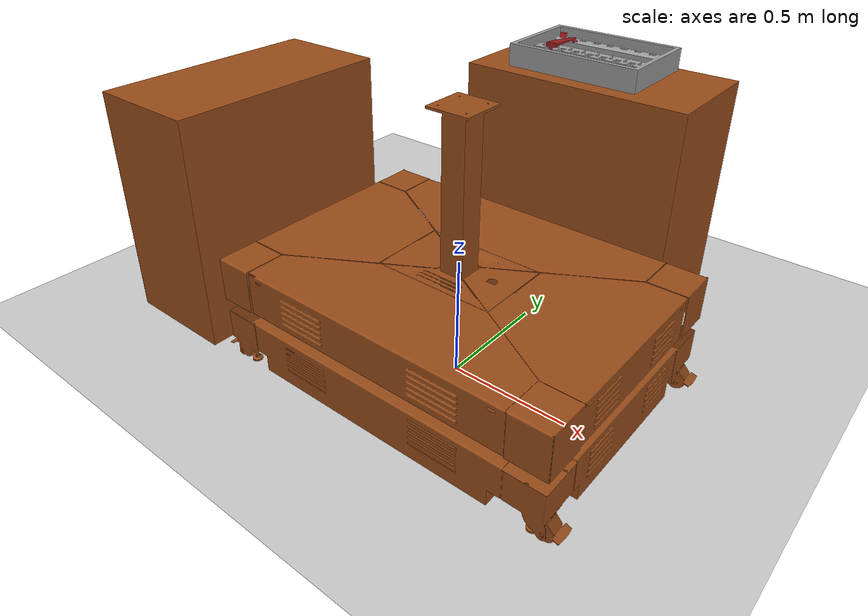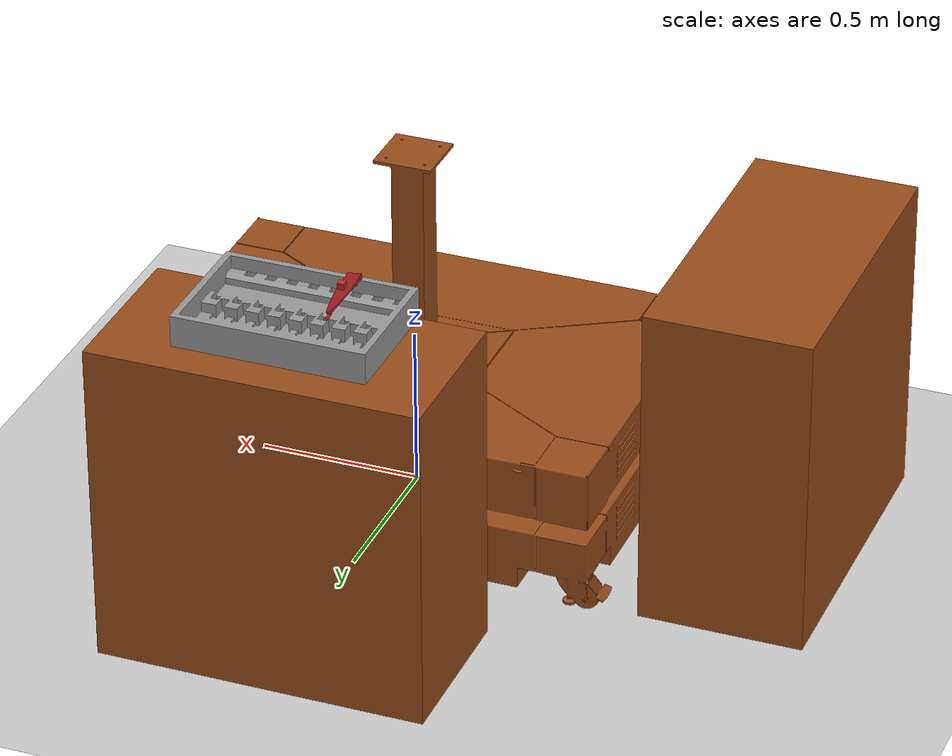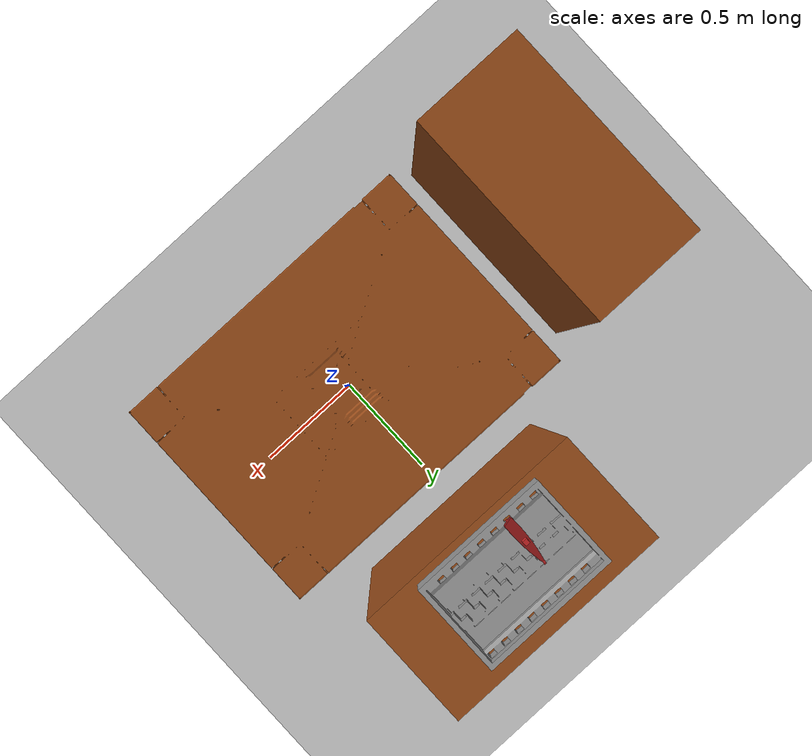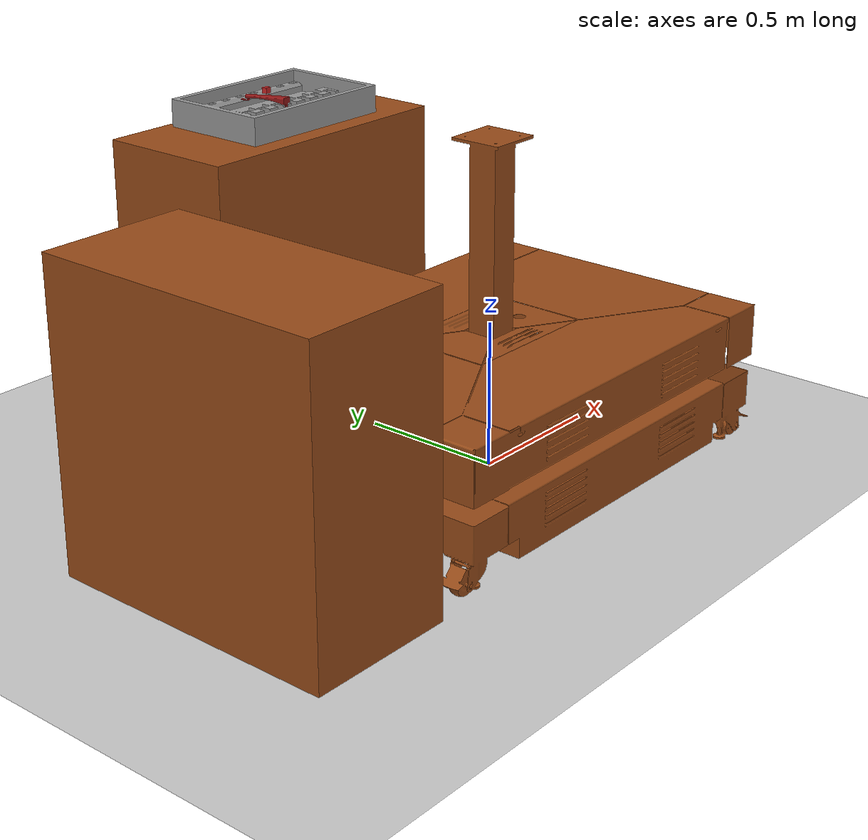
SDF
<sdf version="1.6">
 <world name="default">
  <light name="sun" type="directional">
   <pose>0 0 10 0 -0 0</pose>
   <diffuse>0.8 0.8 0.8 1</diffuse>
   <specular>0.1 0.1 0.1 1</specular>
   <attenuation>
    <range>1000</range>
    <constant>0.9</constant>
    <linear>0.01</linear>
    <quadratic>0.001</quadratic>
   </attenuation>
   <direction>-0.5 0.5 -1</direction>
  </light>
  <model name="ground_plane">
   <static>1</static>
   <link name="link">
    <collision name="collision">
     <geometry><plane><normal>0 0 1</normal><size>100 100</size></plane></geometry>
     <surface><friction><ode><mu>100</mu><mu2>50</mu2></ode></friction></surface>
    </collision>
    <visual name="visual">
     <cast_shadows>0</cast_shadows>
     <geometry><plane><normal>0 0 1</normal><size>100 100</size></plane></geometry>
     <material>
      <script><uri>file://media/materials/scripts/gazebo.material</uri><name>Gazebo/Grey</name></script>
     </material>
    </visual>
   </link>
  </model>
  <gravity>0 0 -9.8</gravity>
  <magnetic_field>6e-06 2.3e-05 -4.2e-05</magnetic_field>
  <atmosphere type="adiabatic"/>
  <physics name="default_physics" default="0" type="ode">
   <max_step_size>0.001</max_step_size>
   <real_time_factor>1</real_time_factor>
   <real_time_update_rate>1000</real_time_update_rate>
  </physics>
  <scene><ambient>0.4 0.4 0.4 1</ambient><background>0.25 0.25 0.25 1</background><shadows>1</shadows></scene>
  <spherical_coordinates>
   <surface_model>EARTH_WGS84</surface_model>
   <latitude_deg>0</latitude_deg>
   <longitude_deg>0</longitude_deg>
   <elevation>0</elevation>
   <heading_deg>0</heading_deg>
  </spherical_coordinates>
  <model name="stand">
   <static>1</static>
   <pose>0 1.6 1.6   1.5708 -0 -3.14159</pose>
   <link name="stand">
    <self_collide>1</self_collide>
    <inertial>
     <mass>10</mass>
     <inertia><ixx>1</ixx><ixy>0</ixy><ixz>0</ixz><iyy>1</iyy><iyz>0</iyz><izz>1</izz></inertia>
    </inertial>
    <collision name="collision1">
     <geometry>
      <mesh>
       <scale>0.001 0.001 0.001</scale>
       <uri>/home/robotics/catkin_ws/src/AI-robot-control/simulation/meshes/environments/collision/plain_table.stl</uri>
      </mesh>
     </geometry>
    </collision>
    <visual name="visual1">
     <geometry>
      <mesh>
       <scale>0.001 0.001 0.001</scale>
       <uri>/home/robotics/catkin_ws/src/AI-robot-control/simulation/meshes/environments/visual/plain_table.dae</uri>
      </mesh>
     </geometry>
     <material><ambient>0.6 0.3 0.1 1</ambient></material>
    </visual>
   </link>
  </model>
  <model name="goal_stand">
   <static>1</static>
   <pose>-0.475 -0.03 1.6   1.5708 -0 1.5708</pose>
   <link name="stand">
    <self_collide>1</self_collide>
    <inertial>
     <mass>10</mass>
     <inertia><ixx>1</ixx><ixy>0</ixy><ixz>0</ixz><iyy>1</iyy><iyz>0</iyz><izz>1</izz></inertia>
    </inertial>
    <collision name="collision1">
     <geometry>
      <mesh>
       <scale>0.001 0.001 0.001</scale>
       <uri>/home/robotics/catkin_ws/src/AI-robot-control/simulation/meshes/environments/collision/plain_table.stl</uri>
      </mesh>
     </geometry>
    </collision>
    <visual name="visual1">
     <geometry>
      <mesh>
       <scale>0.001 0.001 0.001</scale>
       <uri>/home/robotics/catkin_ws/src/AI-robot-control/simulation/meshes/environments/visual/plain_table.dae</uri>
      </mesh>
     </geometry>
     <material><ambient>0.6 0.3 0.1 1</ambient></material>
    </visual>
   </link>
  </model>
  <model name="Pickbot_Case">
   <static>1</static>
   <link name="Pickbot_Case">
    <self_collide>1</self_collide>
    <inertial>
     <mass>10</mass>
     <inertia><ixx>1</ixx><ixy>0</ixy><ixz>0</ixz><iyy>1</iyy><iyz>0</iyz><izz>1</izz></inertia>
    </inertial>
    <collision name="collision1">
     <geometry>
      <mesh>
       <scale>0.001 0.001 0.001</scale>
       <uri>/home/robotics/catkin_ws/src/AI-robot-control/simulation/meshes/environments/collision/Pickbot_Case.stl</uri>
      </mesh>
     </geometry>
    </collision>
    <visual name="visual1">
     <geometry>
      <mesh>
       <scale>0.001 0.001 0.001</scale>
       <uri>/home/robotics/catkin_ws/src/AI-robot-control/simulation/meshes/environments/visual/Pickbot_Case.dae</uri>
      </mesh>
     </geometry>
     <material><ambient>0.6 0.3 0.1 1</ambient></material>
    </visual>
   </link>
  </model>
  <model name="door_handle_container">
   <pose>-0.019 0.92 1.062 0 -0 0</pose>
   <link name="container">
    <inertial>
     <mass>1</mass>
     <inertia>
      <ixx>0.166667</ixx>
      <ixy>0</ixy>
      <ixz>0</ixz>
      <iyy>0.166667</iyy>
      <iyz>0</iyz>
      <izz>0.166667</izz>
     </inertia>
    </inertial>
    <visual name="visual">
     <geometry>
      <mesh>
       <uri>/home/robotics/catkin_ws/src/AI-robot-control/simulation/meshes/environments/visual/CAR_HANDLE_BOX.dae</uri>
       <scale>0.001 0.001 0.001</scale>
      </mesh>
     </geometry>
     <material>
      <lighting>1</lighting>
      <script><uri>file://media/materials/scripts/gazebo.material</uri><name>Gazebo/Grey</name></script>
      <shader type="pixel"/>
      <ambient>0.3 0.3 0.3 1</ambient>
      <diffuse>0.7 0.7 0.7 1</diffuse>
      <specular>0.01 0.01 0.01 1</specular>
      <emissive>0 0 0 1</emissive>
     </material>
    </visual>
    <collision name="collision">
     <geometry>
      <mesh>
       <uri>/home/robotics/catkin_ws/src/AI-robot-control/simulation/meshes/environments/collision/CAR_HANDLE_BOX.stl</uri>
       <scale>0.001 0.001 0.001</scale>
      </mesh>
     </geometry>
     <surface>
      <friction>
       <ode><mu>1</mu><mu2>1</mu2><fdir1>0 0 0</fdir1><slip1>0</slip1><slip2>0</slip2></ode>
       <torsional>
        <coefficient>1</coefficient>
        <patch_radius>0</patch_radius>
        <surface_radius>0</surface_radius>
        <use_patch_radius>1</use_patch_radius>
        <ode><slip>0</slip></ode>
       </torsional>
      </friction>
      <bounce><restitution_coefficient>0</restitution_coefficient><threshold>1e+06</threshold></bounce>
      <contact>
       <collide_without_contact>0</collide_without_contact>
       <collide_without_contact_bitmask>1</collide_without_contact_bitmask>
       <collide_bitmask>1</collide_bitmask>
       <ode>
        <soft_cfm>0</soft_cfm>
        <soft_erp>0.2</soft_erp>
        <kp>1e+13</kp>
        <kd>1</kd>
        <max_vel>0.01</max_vel>
        <min_depth>0</min_depth>
       </ode>
       <bullet>
        <split_impulse>1</split_impulse>
        <split_impulse_penetration_threshold>-0.01</split_impulse_penetration_threshold>
        <soft_cfm>0</soft_cfm>
        <soft_erp>0.2</soft_erp>
        <kp>1e+13</kp>
        <kd>1</kd>
       </bullet>
      </contact>
     </surface>
    </collision>
   </link>
   <static>1</static>
  </model>
  <model name="door_handle">
   <pose>-0.13 0.848 1.1 0.002567 0.102 1.563</pose>
   <link name="the_object">
    <inertial>
     <mass>1</mass>
     <inertia>
      <ixx>0.166667</ixx>
      <ixy>0</ixy>
      <ixz>0</ixz>
      <iyy>0.166667</iyy>
      <iyz>0</iyz>
      <izz>0.166667</izz>
     </inertia>
    </inertial>
    <visual name="visual">
     <geometry>
      <mesh>
       <uri>/home/robotics/catkin_ws/src/AI-robot-control/simulation/meshes/environments/visual/CAR_HANDLE.dae</uri>
       <scale>0.001 0.001 0.001</scale>
      </mesh>
     </geometry>
     <material>
      <lighting>1</lighting>
      <script><uri>file://media/materials/scripts/gazebo.material</uri><name>Gazebo/Grey</name></script>
      <shader type="pixel"/>
      <ambient>0.6 0.1 0.1 1</ambient>
      <diffuse>0.7 0.7 0.7 1</diffuse>
      <specular>0.01 0.01 0.01 1</specular>
      <emissive>0 0 0 1</emissive>
     </material>
    </visual>
    <collision name="collision">
     <geometry>
      <mesh>
       <uri>/home/robotics/catkin_ws/src/AI-robot-control/simulation/meshes/environments/collision/CAR_HANDLE.stl</uri>
       <scale>0.001 0.001 0.001</scale>
      </mesh>
     </geometry>
     <surface>
      <friction>
       <ode><mu>1</mu><mu2>1</mu2><fdir1>0 0 0</fdir1><slip1>0</slip1><slip2>0</slip2></ode>
       <torsional>
        <coefficient>1</coefficient>
        <patch_radius>0</patch_radius>
        <surface_radius>0</surface_radius>
        <use_patch_radius>1</use_patch_radius>
        <ode><slip>0</slip></ode>
       </torsional>
      </friction>
      <bounce><restitution_coefficient>0</restitution_coefficient><threshold>1e+06</threshold></bounce>
      <contact>
       <collide_without_contact>0</collide_without_contact>
       <collide_without_contact_bitmask>1</collide_without_contact_bitmask>
       <collide_bitmask>1</collide_bitmask>
       <ode>
        <soft_cfm>0</soft_cfm>
        <soft_erp>0.2</soft_erp>
        <kp>1e+13</kp>
        <kd>1</kd>
        <max_vel>0.01</max_vel>
        <min_depth>0</min_depth>
       </ode>
       <bullet>
        <split_impulse>1</split_impulse>
        <split_impulse_penetration_threshold>-0.01</split_impulse_penetration_threshold>
        <soft_cfm>0</soft_cfm>
        <soft_erp>0.2</soft_erp>
        <kp>1e+13</kp>
        <kd>1</kd>
       </bullet>
      </contact>
     </surface>
    </collision>
   </link>
   <static>0</static>
  </model>
  <model name="red_dot">
   <pose>-0.13 0.848 1.15 0.002567 0.102 1.563</pose>
   <link name="target">
    <visual name="visual">
     <geometry><box><size>0.02 0.02 0.02</size></box></geometry>
     <material>
      <script><name>Gazebo/Red</name><uri>file://media/materials/scripts/gazebo.material</uri></script>
     </material>
    </visual>
    <gravity>0</gravity>
   </link>
  </model>
 </world>
</sdf>
